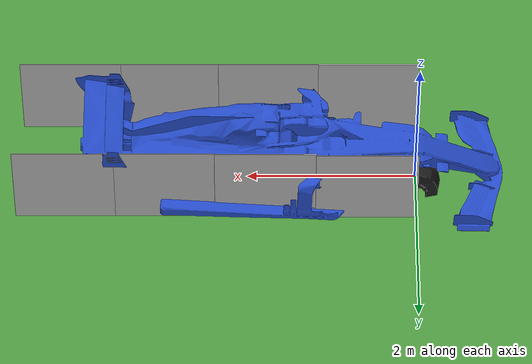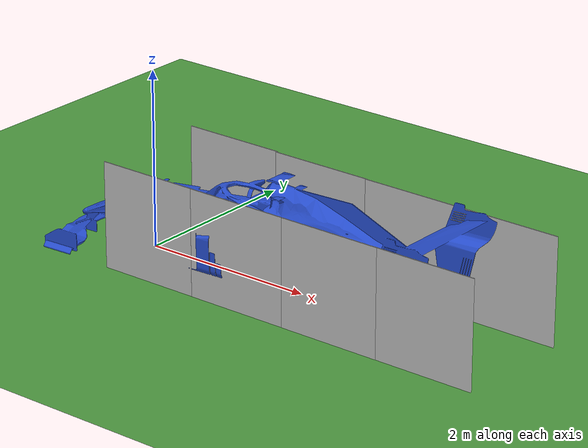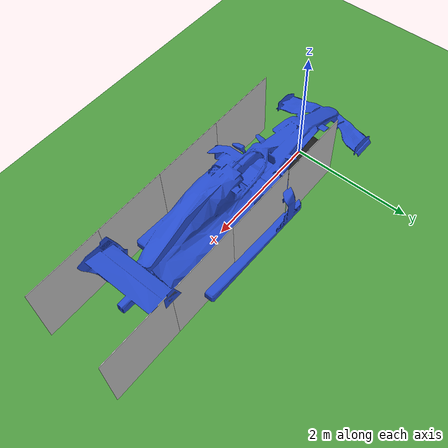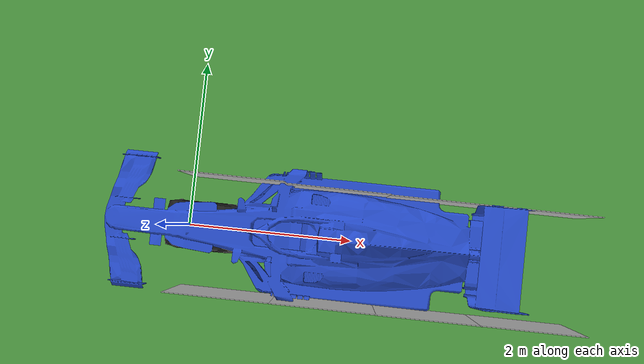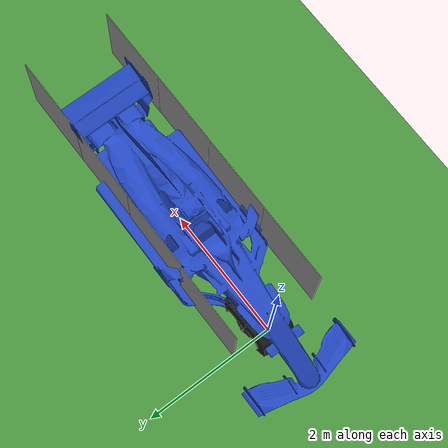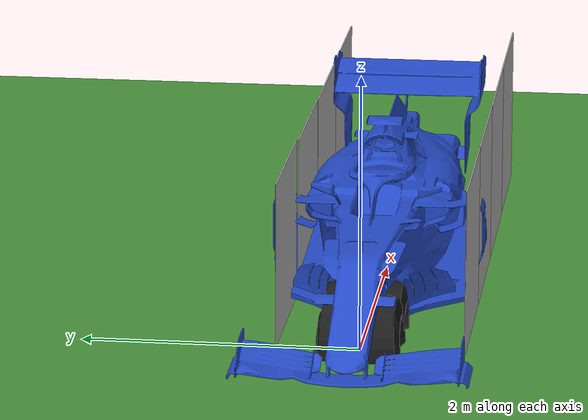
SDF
<sdf version="1.6">
 <world name="racecar_tunnel">
  <light name="sun" type="directional">
   <pose>0 0 10 0 -0 0</pose>
   <diffuse>0.8 0.8 0.8 1</diffuse>
   <specular>0.1 0.1 0.1 1</specular>
   <attenuation>
    <range>1000</range>
    <constant>0.9</constant>
    <linear>0.01</linear>
    <quadratic>0.001</quadratic>
   </attenuation>
   <direction>-0.5 0.5 -1</direction>
  </light>
  <model name="ground_plane">
   <static>1</static>
   <link name="link">
    <collision name="collision">
     <geometry><plane><normal>0 0 1</normal><size>150 150</size></plane></geometry>
     <surface><friction><ode><mu>100</mu><mu2>50</mu2></ode></friction></surface>
    </collision>
    <visual name="visual">
     <cast_shadows>0</cast_shadows>
     <geometry><plane><normal>0 0 1</normal><size>150 150</size></plane></geometry>
     <material>
      <script><uri>file://media/materials/scripts/gazebo.material</uri><name>Gazebo/Grass</name></script>
     </material>
    </visual>
   </link>
  </model>
  <gravity>0 0 -9.8</gravity>
  <magnetic_field>6e-06 2.3e-05 -4.2e-05</magnetic_field>
  <atmosphere type="adiabatic"/>
  <physics name="default_physics" default="0" type="ode">
   <max_step_size>0.001</max_step_size>
   <real_time_factor>1</real_time_factor>
   <real_time_update_rate>1000</real_time_update_rate>
  </physics>
  <scene><ambient>0.4 0.4 0.4 1</ambient><background>0.7 0.7 0.7 1</background><shadows>1</shadows></scene>
  <spherical_coordinates>
   <surface_model>EARTH_WGS84</surface_model>
   <latitude_deg>0</latitude_deg>
   <longitude_deg>0</longitude_deg>
   <elevation>0</elevation>
   <heading_deg>0</heading_deg>
  </spherical_coordinates>
  <model name="roguetwo">
   <link name="base_link">
    <inertial>
     <pose>0.147702 0 0.05 0 -0 0</pose>
     <mass>4.00003</mass>
     <inertia>
      <ixx>0.0106121</ixx>
      <ixy>0</ixy>
      <ixz>-2.90758e-07</ixz>
      <iyy>0.0504138</iyy>
      <iyz>0</iyz>
      <izz>0.0586548</izz>
     </inertia>
    </inertial>
    <collision name="base_link_fixed_joint_lump__zed_camera_link_collision">
     <pose>0.39 0 0.09 0 -0 0</pose>
     <geometry><box><size>0.033 0.175 0.03</size></box></geometry>
    </collision>
    <visual name="base_link_fixed_joint_lump__chassis_visual">
     <pose>0 0 0.05 0 -0 0</pose>
     <geometry>
      <mesh><scale>1 1 1</scale><uri>/home/ryan/roguetwo_ws/src/roguetwo_description/meshes/chassis.STL</uri></mesh>
     </geometry>
     <material>
      <script><name>Gazebo/Blue</name><uri>file://media/materials/scripts/gazebo.material</uri></script>
     </material>
    </visual>
    <visual name="base_link_fixed_joint_lump__zed_camera_link_visual_1">
     <pose>0.39 0 0.09 0 -0 0</pose>
     <geometry><box><size>0.033 0.175 0.03</size></box></geometry>
    </visual>
    <sensor name="zed_camera_left_sensor" type="camera">
     <update_rate>30</update_rate>
     <camera name="zed_camera_left_camera">
      <horizontal_fov>0.870922</horizontal_fov>
      <image><width>640</width><height>480</height><format>B8G8R8</format></image>
      <clip><near>0.02</near><far>300</far></clip>
      <noise><type>gaussian</type><mean>0</mean><stddev>0.007</stddev></noise>
     </camera>
     <plugin name="camera_controller" filename="libgazebo_ros_camera.so">
      <alwaysOn>true</alwaysOn>
      <updateRate>30.0</updateRate>
      <cameraName>/camera/zed</cameraName>
      <imageTopicName>rgb/image_rect_color</imageTopicName>
      <cameraInfoTopicName>rgb/camera_info</cameraInfoTopicName>
      <frameName>camera_link</frameName>
      <hackBaseline>0</hackBaseline>
      <distortionK1>0.0</distortionK1>
      <distortionK2>0.0</distortionK2>
      <distortionK3>0.0</distortionK3>
      <distortionT1>0.0</distortionT1>
      <distortionT2>0.0</distortionT2>
      <robotNamespace>/</robotNamespace>
     </plugin>
     <pose>0.39 0.06 0.09 0 -0 0</pose>
    </sensor>
   </link>
   <link name="left_rear_wheel">
    <pose>0 0.1 0.05 1.5708 -0 0</pose>
    <inertial>
     <pose>0 0 -0.0225 0 -0 0</pose>
     <mass>0.34055</mass>
     <inertia>
      <ixx>0.00026046</ixx>
      <ixy>0</ixy>
      <ixz>0</ixz>
      <iyy>0.00026046</iyy>
      <iyz>0</iyz>
      <izz>0.00041226</izz>
     </inertia>
    </inertial>
    <collision name="left_rear_wheel_collision">
     <pose>0 0 -0.0225 0 -0 0</pose>
     <geometry><cylinder><length>0.045</length><radius>0.05</radius></cylinder></geometry>
     <surface>
      <contact><ode><kp>1e+07</kp><kd>1</kd></ode></contact>
      <friction><ode><mu>1</mu><mu2>1</mu2><fdir1>1 0 0</fdir1></ode></friction>
     </surface>
    </collision>
    <visual name="left_rear_wheel_visual">
     <geometry>
      <mesh>
       <scale>1 1 1</scale>
       <uri>/home/ryan/roguetwo_ws/src/roguetwo_description/meshes/left_rear_wheel.STL</uri>
      </mesh>
     </geometry>
     <material>
      <script><name>Gazebo/Black</name><uri>file://media/materials/scripts/gazebo.material</uri></script>
     </material>
    </visual>
   </link>
   <joint name="left_rear_wheel_joint" type="revolute">
    <child>left_rear_wheel</child>
    <parent>base_link</parent>
    <axis>
     <xyz>0 1 4e-06</xyz>
     <limit><lower>-1e+16</lower><upper>1e+16</upper></limit>
     <dynamics><spring_reference>0</spring_reference><spring_stiffness>0</spring_stiffness></dynamics>
     <use_parent_model_frame>1</use_parent_model_frame>
    </axis>
   </joint>
   <link name="left_steering_hinge">
    <pose>0.325 0.1 0.05 3.14159 1.57079 3.14159</pose>
    <inertial>
     <mass>0.1</mass>
     <inertia><ixx>4e-06</ixx><ixy>0</ixy><ixz>0</ixz><iyy>4e-06</iyy><iyz>0</iyz><izz>4e-06</izz></inertia>
    </inertial>
    <visual name="left_steering_hinge_visual">
     <geometry>
      <mesh>
       <scale>1 1 1</scale>
       <uri>/home/ryan/roguetwo_ws/src/roguetwo_description/meshes/left_steering_hinge.STL</uri>
      </mesh>
     </geometry>
    </visual>
   </link>
   <joint name="left_steering_hinge_joint" type="revolute">
    <child>left_steering_hinge</child>
    <parent>base_link</parent>
    <axis>
     <xyz>4e-06 0 1</xyz>
     <limit><lower>-1</lower><upper>1</upper><effort>10</effort><velocity>100</velocity></limit>
     <dynamics><spring_reference>0</spring_reference><spring_stiffness>0</spring_stiffness></dynamics>
     <use_parent_model_frame>1</use_parent_model_frame>
    </axis>
   </joint>
   <link name="left_front_wheel">
    <pose>0.325 0.1 0.05 -1.57079 1.57079 -3.14159</pose>
    <inertial>
     <pose>0 0 -0.0225 0 -0 0</pose>
     <mass>0.34055</mass>
     <inertia>
      <ixx>0.00026046</ixx>
      <ixy>0</ixy>
      <ixz>0</ixz>
      <iyy>0.00026046</iyy>
      <iyz>0</iyz>
      <izz>0.00041226</izz>
     </inertia>
    </inertial>
    <collision name="left_front_wheel_collision">
     <pose>0 0 -0.0225 0 -0 0</pose>
     <geometry><cylinder><length>0.045</length><radius>0.05</radius></cylinder></geometry>
     <surface>
      <contact><ode><kp>1e+07</kp><kd>1</kd></ode></contact>
      <friction><ode><mu>1</mu><mu2>1</mu2><fdir1>0 0 1</fdir1></ode></friction>
     </surface>
    </collision>
    <visual name="left_front_wheel_visual">
     <geometry>
      <mesh>
       <scale>1 1 1</scale>
       <uri>/home/ryan/roguetwo_ws/src/roguetwo_description/meshes/left_front_wheel.STL</uri>
      </mesh>
     </geometry>
     <material>
      <script><name>Gazebo/Black</name><uri>file://media/materials/scripts/gazebo.material</uri></script>
     </material>
    </visual>
   </link>
   <joint name="left_front_wheel_joint" type="revolute">
    <child>left_front_wheel</child>
    <parent>left_steering_hinge</parent>
    <axis>
     <xyz>4e-06 1 0</xyz>
     <limit><lower>-1e+16</lower><upper>1e+16</upper></limit>
     <dynamics><spring_reference>0</spring_reference><spring_stiffness>0</spring_stiffness></dynamics>
     <use_parent_model_frame>1</use_parent_model_frame>
    </axis>
   </joint>
   <link name="right_rear_wheel">
    <pose>0 -0.1 0.05 1.5708 -0 0</pose>
    <inertial>
     <pose>0 0 0.0225 0 -0 0</pose>
     <mass>0.34055</mass>
     <inertia>
      <ixx>0.00026046</ixx>
      <ixy>0</ixy>
      <ixz>0</ixz>
      <iyy>0.00026046</iyy>
      <iyz>0</iyz>
      <izz>0.00041226</izz>
     </inertia>
    </inertial>
    <collision name="right_rear_wheel_collision">
     <pose>0 0 0.0225 0 -0 0</pose>
     <geometry><cylinder><length>0.045</length><radius>0.05</radius></cylinder></geometry>
     <surface>
      <contact><ode><kp>1e+07</kp><kd>1</kd></ode></contact>
      <friction><ode><mu>1</mu><mu2>1</mu2><fdir1>1 0 0</fdir1></ode></friction>
     </surface>
    </collision>
    <visual name="right_rear_wheel_visual">
     <geometry>
      <mesh>
       <scale>1 1 1</scale>
       <uri>/home/ryan/roguetwo_ws/src/roguetwo_description/meshes/right_rear_wheel.STL</uri>
      </mesh>
     </geometry>
     <material>
      <script><name>Gazebo/Black</name><uri>file://media/materials/scripts/gazebo.material</uri></script>
     </material>
    </visual>
   </link>
   <joint name="right_rear_wheel_joint" type="revolute">
    <child>right_rear_wheel</child>
    <parent>base_link</parent>
    <axis>
     <xyz>0 1 4e-06</xyz>
     <limit><lower>-1e+16</lower><upper>1e+16</upper></limit>
     <dynamics><spring_reference>0</spring_reference><spring_stiffness>0</spring_stiffness></dynamics>
     <use_parent_model_frame>1</use_parent_model_frame>
    </axis>
   </joint>
   <link name="right_steering_hinge">
    <pose>0.325 -0.1 0.05 3.14159 1.57079 3.14159</pose>
    <inertial>
     <mass>0.1</mass>
     <inertia><ixx>4e-06</ixx><ixy>0</ixy><ixz>0</ixz><iyy>4e-06</iyy><iyz>0</iyz><izz>4e-06</izz></inertia>
    </inertial>
    <visual name="right_steering_hinge_visual">
     <geometry>
      <mesh>
       <scale>1 1 1</scale>
       <uri>/home/ryan/roguetwo_ws/src/roguetwo_description/meshes/right_steering_hinge.STL</uri>
      </mesh>
     </geometry>
    </visual>
   </link>
   <joint name="right_steering_hinge_joint" type="revolute">
    <child>right_steering_hinge</child>
    <parent>base_link</parent>
    <axis>
     <xyz>4e-06 0 1</xyz>
     <limit><lower>-1e+16</lower><upper>1e+16</upper></limit>
     <dynamics><spring_reference>0</spring_reference><spring_stiffness>0</spring_stiffness></dynamics>
     <use_parent_model_frame>1</use_parent_model_frame>
    </axis>
   </joint>
   <link name="right_front_wheel">
    <pose>0.325 -0.1 0.05 -1.57079 1.57079 -3.14159</pose>
    <inertial>
     <pose>0 0 0.0225 0 -0 0</pose>
     <mass>0.34055</mass>
     <inertia>
      <ixx>0.00026046</ixx>
      <ixy>0</ixy>
      <ixz>0</ixz>
      <iyy>0.00026046</iyy>
      <iyz>0</iyz>
      <izz>0.00041226</izz>
     </inertia>
    </inertial>
    <collision name="right_front_wheel_collision">
     <pose>0 0 0.0225 0 -0 0</pose>
     <geometry><cylinder><length>0.045</length><radius>0.05</radius></cylinder></geometry>
     <surface>
      <contact><ode><kp>1e+07</kp><kd>1</kd></ode></contact>
      <friction><ode><mu>1</mu><mu2>1</mu2><fdir1>0 0 1</fdir1></ode></friction>
     </surface>
    </collision>
    <visual name="right_front_wheel_visual">
     <geometry>
      <mesh>
       <scale>1 1 1</scale>
       <uri>/home/ryan/roguetwo_ws/src/roguetwo_description/meshes/right_front_wheel.STL</uri>
      </mesh>
     </geometry>
     <material>
      <script><name>Gazebo/Black</name><uri>file://media/materials/scripts/gazebo.material</uri></script>
     </material>
    </visual>
   </link>
   <joint name="right_front_wheel_joint" type="revolute">
    <child>right_front_wheel</child>
    <parent>right_steering_hinge</parent>
    <axis>
     <xyz>4e-06 1 0</xyz>
     <limit><lower>-1e+16</lower><upper>1e+16</upper></limit>
     <dynamics><spring_reference>0</spring_reference><spring_stiffness>0</spring_stiffness></dynamics>
     <use_parent_model_frame>1</use_parent_model_frame>
    </axis>
   </joint>
   <static>0</static>
   <plugin name="gazebo_ros_control" filename="libgazebo_ros_control.so">
    <robotNamespace>/roguetwo</robotNamespace>
    <robotSimType>gazebo_ros_control/DefaultRobotHWSim</robotSimType>
   </plugin>
   <pose>0.053951 -1e-05 -1e-06 -0 2e-06 -0.000235</pose>
  </model>
  <model name="nist_maze_wall_120">
   <static>1</static>
   <link name="nist_maze_wall_120_link">
    <collision name="collision">
     <geometry>
      <mesh><uri>model://nist_maze_wall_120/meshes/nist_maze_wall_120.dae</uri><scale>1 1 1</scale></mesh>
     </geometry>
    </collision>
    <visual name="visual">
     <geometry>
      <mesh><uri>model://nist_maze_wall_120/meshes/nist_maze_wall_120.dae</uri><scale>1 1 1</scale></mesh>
     </geometry>
    </visual>
   </link>
   <pose>0.595911 0.000541 0 0 -0 0</pose>
  </model>
  <model name="nist_maze_wall_120_0">
   <static>1</static>
   <link name="nist_maze_wall_120_link">
    <collision name="collision">
     <geometry>
      <mesh><uri>model://nist_maze_wall_120/meshes/nist_maze_wall_120.dae</uri><scale>1 1 1</scale></mesh>
     </geometry>
    </collision>
    <visual name="visual">
     <geometry>
      <mesh><uri>model://nist_maze_wall_120/meshes/nist_maze_wall_120.dae</uri><scale>1 1 1</scale></mesh>
     </geometry>
    </visual>
   </link>
   <pose>1.7836 -0.017602 0 0 -0 0</pose>
  </model>
  <model name="nist_maze_wall_120_1">
   <static>1</static>
   <link name="nist_maze_wall_120_link">
    <collision name="collision">
     <geometry>
      <mesh><uri>model://nist_maze_wall_120/meshes/nist_maze_wall_120.dae</uri><scale>1 1 1</scale></mesh>
     </geometry>
    </collision>
    <visual name="visual">
     <geometry>
      <mesh><uri>model://nist_maze_wall_120/meshes/nist_maze_wall_120.dae</uri><scale>1 1 1</scale></mesh>
     </geometry>
    </visual>
   </link>
   <pose>2.96938 -0.024736 0 0 -0 0</pose>
  </model>
  <model name="nist_maze_wall_120_3">
   <static>1</static>
   <link name="nist_maze_wall_120_link">
    <collision name="collision">
     <geometry>
      <mesh><uri>model://nist_maze_wall_120/meshes/nist_maze_wall_120.dae</uri><scale>1 1 1</scale></mesh>
     </geometry>
    </collision>
    <visual name="visual">
     <geometry>
      <mesh><uri>model://nist_maze_wall_120/meshes/nist_maze_wall_120.dae</uri><scale>1 1 1</scale></mesh>
     </geometry>
    </visual>
   </link>
   <pose>4.14276 -0.024742 0 0 -0 0</pose>
  </model>
  <model name="nist_maze_wall_120_5">
   <static>1</static>
   <link name="nist_maze_wall_120_link">
    <collision name="collision">
     <geometry>
      <mesh><uri>model://nist_maze_wall_120/meshes/nist_maze_wall_120.dae</uri><scale>1 1 1</scale></mesh>
     </geometry>
    </collision>
    <visual name="visual">
     <geometry>
      <mesh><uri>model://nist_maze_wall_120/meshes/nist_maze_wall_120.dae</uri><scale>1 1 1</scale></mesh>
     </geometry>
    </visual>
   </link>
   <pose>0.56747 -1.34879 0 0 -0 0</pose>
  </model>
  <model name="nist_maze_wall_120_6">
   <static>1</static>
   <link name="nist_maze_wall_120_link">
    <collision name="collision">
     <geometry>
      <mesh><uri>model://nist_maze_wall_120/meshes/nist_maze_wall_120.dae</uri><scale>1 1 1</scale></mesh>
     </geometry>
    </collision>
    <visual name="visual">
     <geometry>
      <mesh><uri>model://nist_maze_wall_120/meshes/nist_maze_wall_120.dae</uri><scale>1 1 1</scale></mesh>
     </geometry>
    </visual>
   </link>
   <pose>1.74668 -1.35012 0 0 -0 0</pose>
  </model>
  <model name="nist_maze_wall_120_7">
   <static>1</static>
   <link name="nist_maze_wall_120_link">
    <collision name="collision">
     <geometry>
      <mesh><uri>model://nist_maze_wall_120/meshes/nist_maze_wall_120.dae</uri><scale>1 1 1</scale></mesh>
     </geometry>
    </collision>
    <visual name="visual">
     <geometry>
      <mesh><uri>model://nist_maze_wall_120/meshes/nist_maze_wall_120.dae</uri><scale>1 1 1</scale></mesh>
     </geometry>
    </visual>
   </link>
   <pose>2.93784 -1.35204 0 0 -0 0</pose>
  </model>
  <model name="nist_maze_wall_120_8">
   <static>1</static>
   <link name="nist_maze_wall_120_link">
    <collision name="collision">
     <geometry>
      <mesh><uri>model://nist_maze_wall_120/meshes/nist_maze_wall_120.dae</uri><scale>1 1 1</scale></mesh>
     </geometry>
    </collision>
    <visual name="visual">
     <geometry>
      <mesh><uri>model://nist_maze_wall_120/meshes/nist_maze_wall_120.dae</uri><scale>1 1 1</scale></mesh>
     </geometry>
    </visual>
   </link>
   <pose>4.08823 -1.35031 0 0 -0 0</pose>
  </model>
 </world>
</sdf>
